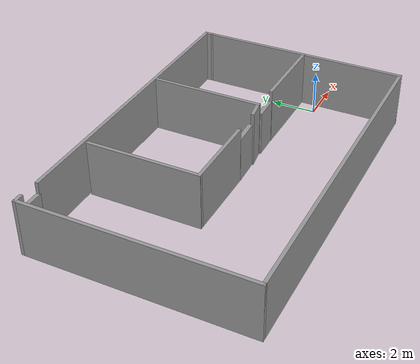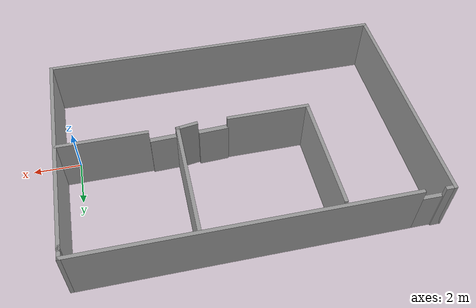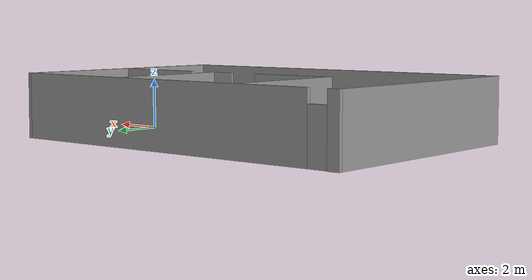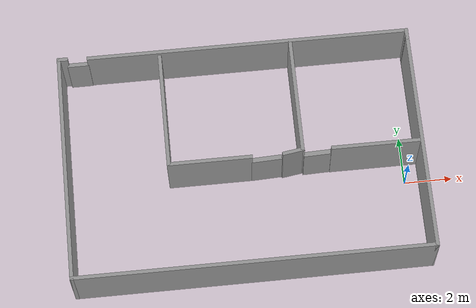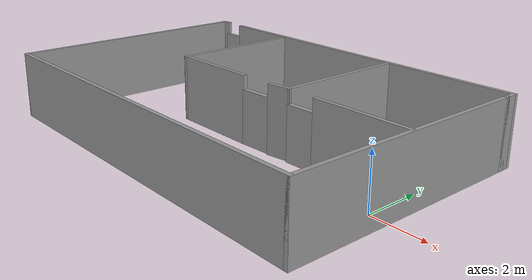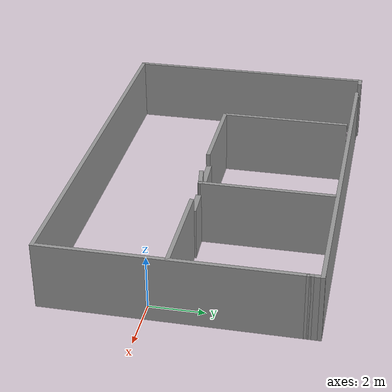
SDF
<?xml version='1.0'?>
<sdf version='1.7'>
  <model name='warehouse_03'>
    <pose>-6.65357 1.14533 0 0 -0 0</pose>
    <link name='Door_0'>
      <collision name='Door_0_Collision'>
        <geometry>
          <box>
            <size>0.9 0.17 2</size>
          </box>
        </geometry>
        <pose>0 0 1 0 -0 0</pose>
      </collision>
      <visual name='Door_0_Visual'>
        <pose>0 0 1 0 -0 0</pose>
        <geometry>
          <box>
            <size>0.9 0.17 2</size>
          </box>
        </geometry>
        <material>
          <script>
            <uri>file://media/materials/scripts/gazebo.material</uri>
            <name>Gazebo/Grey</name>
          </script>
        </material>
      </visual>
      <pose>-6.53333 4.73867 0 0 -0 0</pose>
    </link>
    <link name='Door_1'>
      <collision name='Door_1_Collision'>
        <geometry>
          <box>
            <size>1.26366 0.2 2</size>
          </box>
        </geometry>
        <pose>0 0 1 0 -0 0</pose>
      </collision>
      <visual name='Door_1_Visual'>
        <pose>0 0 1 0 -0 0</pose>
        <geometry>
          <box>
            <size>1.26366 0.2 2</size>
          </box>
        </geometry>
        <material>
          <script>
            <uri>file://media/materials/scripts/gazebo.material</uri>
            <name>Gazebo/Grey</name>
          </script>
        </material>
      </visual>
      <pose>0.90261 -0.280291 0 0 0 -3.09848</pose>
    </link>
    <link name='Door_2'>
      <collision name='Door_2_Collision'>
        <geometry>
          <box>
            <size>1.11746 0.2 2</size>
          </box>
        </geometry>
        <pose>0 0 1 0 -0 0</pose>
      </collision>
      <visual name='Door_2_Visual'>
        <pose>0 0 1 0 -0 0</pose>
        <geometry>
          <box>
            <size>1.11746 0.2 2</size>
          </box>
        </geometry>
        <material>
          <script>
            <uri>file://media/materials/scripts/gazebo.material</uri>
            <name>Gazebo/Grey</name>
          </script>
        </material>
      </visual>
      <pose>2.99697 -0.236679 0 0 -0 -3.11094</pose>
    </link>
    <link name='Wall_0'>
      <collision name='Wall_0_Collision'>
        <geometry>
          <box>
            <size>9.75 0.15 2.5</size>
          </box>
        </geometry>
        <pose>0 0 1.25 0 -0 0</pose>
      </collision>
      <visual name='Wall_0_Visual'>
        <pose>0 0 1.25 0 -0 0</pose>
        <geometry>
          <box>
            <size>9.75 0.15 2.5</size>
          </box>
        </geometry>
        <material>
          <script>
            <uri>file://media/materials/scripts/gazebo.material</uri>
            <name>Gazebo/Grey</name>
          </script>
          <ambient>1 1 1 1</ambient>
        </material>
        <meta>
          <layer>0</layer>
        </meta>
      </visual>
      <pose>-7.3 0 0 0 -0 -1.5708</pose>
    </link>
    <link name='Wall_1'>
      <collision name='Wall_1_Collision'>
        <geometry>
          <box>
            <size>14.75 0.15 2.5</size>
          </box>
        </geometry>
        <pose>0 0 1.25 0 -0 0</pose>
      </collision>
      <visual name='Wall_1_Visual'>
        <pose>0 0 1.25 0 -0 0</pose>
        <geometry>
          <box>
            <size>14.75 0.15 2.5</size>
          </box>
        </geometry>
        <material>
          <script>
            <uri>file://media/materials/scripts/gazebo.material</uri>
            <name>Gazebo/Grey</name>
          </script>
          <ambient>1 1 1 1</ambient>
        </material>
        <meta>
          <layer>0</layer>
        </meta>
      </visual>
      <pose>0 -4.8 0 0 -0 0</pose>
    </link>
    <link name='Wall_10'>
      <collision name='Wall_10_Collision'>
        <geometry>
          <box>
            <size>5 0.15 2.5</size>
          </box>
        </geometry>
        <pose>0 0 1.25 0 -0 0</pose>
      </collision>
      <visual name='Wall_10_Visual'>
        <pose>0 0 1.25 0 -0 0</pose>
        <geometry>
          <box>
            <size>5 0.15 2.5</size>
          </box>
        </geometry>
        <material>
          <script>
            <uri>file://media/materials/scripts/gazebo.material</uri>
            <name>Gazebo/Grey</name>
          </script>
          <ambient>1 1 1 1</ambient>
        </material>
        <meta>
          <layer>0</layer>
        </meta>
      </visual>
      <pose>-3.09867 2.099 0 0 -0 -1.5708</pose>
    </link>
    <link name='Wall_11'>
      <collision name='Wall_11_Collision'>
        <geometry>
          <box>
            <size>3.5 0.15 2.5</size>
          </box>
        </geometry>
        <pose>0 0 1.25 0 -0 0</pose>
      </collision>
      <visual name='Wall_11_Visual'>
        <pose>0 0 1.25 0 -0 0</pose>
        <geometry>
          <box>
            <size>3.5 0.15 2.5</size>
          </box>
        </geometry>
        <material>
          <script>
            <uri>file://media/materials/scripts/gazebo.material</uri>
            <name>Gazebo/Grey</name>
          </script>
          <ambient>1 1 1 1</ambient>
        </material>
        <meta>
          <layer>0</layer>
        </meta>
      </visual>
      <pose>-1.42367 -0.326 0 0 -0 0</pose>
    </link>
    <link name='Wall_13'>
      <collision name='Wall_13_Collision'>
        <geometry>
          <box>
            <size>5 0.15 2.5</size>
          </box>
        </geometry>
        <pose>0 0 1.25 0 -0 0</pose>
      </collision>
      <visual name='Wall_13_Visual'>
        <pose>0 0 1.25 0 -0 0</pose>
        <geometry>
          <box>
            <size>5 0.15 2.5</size>
          </box>
        </geometry>
        <material>
          <script>
            <uri>file://media/materials/scripts/gazebo.material</uri>
            <name>Gazebo/Grey</name>
          </script>
          <ambient>1 1 1 1</ambient>
        </material>
        <meta>
          <layer>0</layer>
        </meta>
      </visual>
      <pose>2.39067 2.22167 0 0 -0 -1.5708</pose>
    </link>
    <link name='Wall_15'>
      <collision name='Wall_15_Collision'>
        <geometry>
          <box>
            <size>3.75 0.15 2.5</size>
          </box>
        </geometry>
        <pose>0 0 1.25 0 -0 0</pose>
      </collision>
      <visual name='Wall_15_Visual'>
        <pose>0 0 1.25 0 -0 0</pose>
        <geometry>
          <box>
            <size>3.75 0.15 2.5</size>
          </box>
        </geometry>
        <material>
          <script>
            <uri>file://media/materials/scripts/gazebo.material</uri>
            <name>Gazebo/Grey</name>
          </script>
          <ambient>1 1 1 1</ambient>
        </material>
        <meta>
          <layer>0</layer>
        </meta>
      </visual>
      <pose>5.436 -0.26 0 0 -0 3.14159</pose>
    </link>
    <link name='Wall_19'>
      <collision name='Wall_19_Collision'>
        <geometry>
          <box>
            <size>0.925694 0.15 2.5</size>
          </box>
        </geometry>
        <pose>0 0 1.25 0 -0 0</pose>
      </collision>
      <visual name='Wall_19_Visual'>
        <pose>0 0 1.25 0 -0 0</pose>
        <geometry>
          <box>
            <size>0.925694 0.15 2.5</size>
          </box>
        </geometry>
        <material>
          <script>
            <uri>file://media/materials/scripts/gazebo.material</uri>
            <name>Gazebo/Grey</name>
          </script>
          <ambient>1 1 1 1</ambient>
        </material>
        <meta>
          <layer>0</layer>
        </meta>
      </visual>
      <pose>2.00733 -0.262333 0 0 -0 0.152715</pose>
    </link>
    <link name='Wall_2'>
      <collision name='Wall_2_Collision'>
        <geometry>
          <box>
            <size>9.25 0.15 2.5</size>
          </box>
        </geometry>
        <pose>0 0 1.25 0 -0 0</pose>
      </collision>
      <visual name='Wall_2_Visual'>
        <pose>0 0 1.25 0 -0 0</pose>
        <geometry>
          <box>
            <size>9.25 0.15 2.5</size>
          </box>
        </geometry>
        <material>
          <script>
            <uri>file://media/materials/scripts/gazebo.material</uri>
            <name>Gazebo/Grey</name>
          </script>
          <ambient>1 1 1 1</ambient>
        </material>
        <meta>
          <layer>0</layer>
        </meta>
      </visual>
      <pose>7.3 -0.25 0 0 -0 1.5708</pose>
    </link>
    <link name='Wall_3'>
      <collision name='Wall_3_Collision'>
        <geometry>
          <box>
            <size>0.15 0.15 2.5</size>
          </box>
        </geometry>
        <pose>0 0 1.25 0 -0 0</pose>
      </collision>
      <visual name='Wall_3_Visual'>
        <pose>0 0 1.25 0 -0 0</pose>
        <geometry>
          <box>
            <size>0.15 0.15 2.5</size>
          </box>
        </geometry>
        <material>
          <script>
            <uri>file://media/materials/scripts/gazebo.material</uri>
            <name>Gazebo/Grey</name>
          </script>
          <ambient>1 1 1 1</ambient>
        </material>
        <meta>
          <layer>0</layer>
        </meta>
      </visual>
      <pose>7.3 4.3 0 0 -0 0</pose>
    </link>
    <link name='Wall_4'>
      <collision name='Wall_4_Collision'>
        <geometry>
          <box>
            <size>0.25 0.15 2.5</size>
          </box>
        </geometry>
        <pose>0 0 1.25 0 -0 0</pose>
      </collision>
      <visual name='Wall_4_Visual'>
        <pose>0 0 1.25 0 -0 0</pose>
        <geometry>
          <box>
            <size>0.25 0.15 2.5</size>
          </box>
        </geometry>
        <material>
          <script>
            <uri>file://media/materials/scripts/gazebo.material</uri>
            <name>Gazebo/Grey</name>
          </script>
          <ambient>1 1 1 1</ambient>
        </material>
        <meta>
          <layer>0</layer>
        </meta>
      </visual>
      <pose>7.3 4.35 0 0 -0 1.5708</pose>
    </link>
    <link name='Wall_5'>
      <collision name='Wall_5_Collision'>
        <geometry>
          <box>
            <size>0.5 0.15 2.5</size>
          </box>
        </geometry>
        <pose>0 0 1.25 0 -0 0</pose>
      </collision>
      <visual name='Wall_5_Visual'>
        <pose>0 0 1.25 0 -0 0</pose>
        <geometry>
          <box>
            <size>0.5 0.15 2.5</size>
          </box>
        </geometry>
        <material>
          <script>
            <uri>file://media/materials/scripts/gazebo.material</uri>
            <name>Gazebo/Grey</name>
          </script>
          <ambient>1 1 1 1</ambient>
        </material>
        <meta>
          <layer>0</layer>
        </meta>
      </visual>
      <pose>7.3 4.575 0 0 -0 1.5708</pose>
    </link>
    <link name='Wall_6'>
      <collision name='Wall_6_Collision'>
        <geometry>
          <box>
            <size>13.5 0.15 2.5</size>
          </box>
        </geometry>
        <pose>0 0 1.25 0 -0 0</pose>
      </collision>
      <visual name='Wall_6_Visual'>
        <pose>0 0 1.25 0 -0 0</pose>
        <geometry>
          <box>
            <size>13.5 0.15 2.5</size>
          </box>
        </geometry>
        <material>
          <script>
            <uri>file://media/materials/scripts/gazebo.material</uri>
            <name>Gazebo/Grey</name>
          </script>
          <ambient>1 1 1 1</ambient>
        </material>
        <meta>
          <layer>0</layer>
        </meta>
      </visual>
      <pose>0.625 4.75 0 0 -0 3.14159</pose>
    </link>
    <link name='Wall_8'>
      <collision name='Wall_8_Collision'>
        <geometry>
          <box>
            <size>0.456667 0.15 2.5</size>
          </box>
        </geometry>
        <pose>0 0 1.25 0 -0 0</pose>
      </collision>
      <visual name='Wall_8_Visual'>
        <pose>0 0 1.25 0 -0 0</pose>
        <geometry>
          <box>
            <size>0.456667 0.15 2.5</size>
          </box>
        </geometry>
        <material>
          <script>
            <uri>file://media/materials/scripts/gazebo.material</uri>
            <name>Gazebo/Grey</name>
          </script>
          <ambient>1 1 1 1</ambient>
        </material>
        <meta>
          <layer>0</layer>
        </meta>
      </visual>
      <pose>-7.14667 4.8 0 0 -0 3.14159</pose>
    </link>
    <static>1</static>
  </model>
</sdf>
